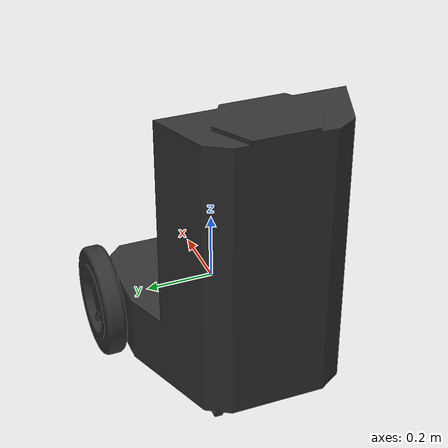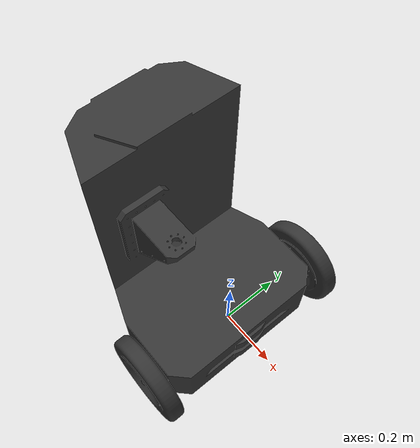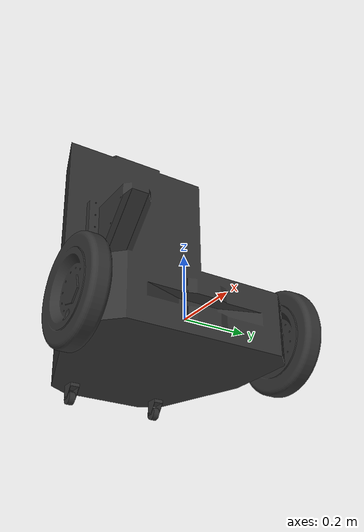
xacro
<?xml version="1.0"?>
<robot xmlns:xacro="http://www.ros.org/wiki/xacro">

  <xacro:include filename="$(find tr3_description)/urdf/base/base.gazebo.xacro" />
	<xacro:include filename="$(find tr3_description)/urdf/base/base.transmission.xacro" />

	<!-- wheel macros -->
  <xacro:macro name="tr3_wheel" params="name *origin *axis">
		<joint name="${name}" type="continuous">
			<parent link="base_link"/>
			<child link="link_${name}"/>
			<xacro:insert_block name="axis" />
			<limit effort="100.0" velocity="1.0"/>
			<xacro:insert_block name="origin" />
    	<dynamics damping="0.001" friction="0.1"/>
		</joint>
		<link name="link_${name}">
			<collision>
				<geometry>
		      <mesh filename="package://tr3_description/meshes/stl/xt-wl-a.stl" scale="0.001 0.001 0.001"/>
				</geometry>
				<origin rpy="0 0 0" />
			</collision>
			<inertial>
      	<mass value="10" />
		    <inertia ixx="0.01" ixy="0.0" ixz="0.0" iyy="0.01" iyz="0.0" izz="0.01" />
			</inertial>
			<visual>
				<geometry>
		      <mesh filename="package://tr3_description/meshes/stl/xt-wl-a.stl" scale="0.001 0.001 0.001"/>
				</geometry>
		    <material name="slate_gray">
		      <color rgba="0.2 0.2 0.2 1"/>
		    </material>
				<origin rpy="0 0 0" />
			</visual>
		</link>
	</xacro:macro>

	<!-- resulting links and joints -->
	<link name="base_link">
		<collision>
			<geometry>
        <mesh filename="package://tr3_description/meshes/stl/tr-bs-a.stl" scale="0.001 0.001 0.001"/>
			</geometry>
			<origin rpy="0 0 1.5708" />
		</collision>
		<inertial>
      	<mass value="10" />
        <origin xyz="-0.300 0 0.100" />
		    <inertia ixx="0.001" ixy="0.0" ixz="0.0" iyy="0.001" iyz="0.0" izz="0.001" />
		</inertial>
		<visual>
			<geometry>
        <mesh filename="package://tr3_description/meshes/stl/tr-bs-a.stl" scale="0.001 0.001 0.001"/>
			</geometry>
      <material name="slate_gray">
        <color rgba="0.2 0.2 0.2 1"/>
      </material>
			<origin rpy="0 0 1.5708" />
		</visual>
	</link>

  <link name="link_b2">
    <collision>
      <geometry>
        <mesh filename="package://tr3_description/meshes/stl/tr-bs-b.stl" scale="0.001 0.001 0.001"/>
      </geometry>
      <origin rpy="0 0 1.5708" />
    </collision>
    <inertial>
        <mass value="0.1" />
        <inertia ixx="0.0001" ixy="0.0" ixz="0.0" iyy="0.0001" iyz="0.0" izz="0.0001" />
    </inertial>
    <visual>
      <geometry>
        <mesh filename="package://tr3_description/meshes/stl/tr-bs-b.stl" scale="0.001 0.001 0.001"/>
      </geometry>
      <material name="slate_gray">
        <color rgba="0.2 0.2 0.2 1"/>
      </material>
      <origin rpy="0 0 1.5708" />
    </visual>
  </link>

  <link name="link_b3">
    <collision>
      <geometry>
        <mesh filename="package://tr3_description/meshes/stl/tr-bs-c.stl" scale="0.001 0.001 0.001"/>
      </geometry>
      <origin rpy="0 0 1.5708" />
    </collision>
    <inertial>
        <mass value="0.1" />
        <inertia ixx="0.0001" ixy="0.0" ixz="0.0" iyy="0.0001" iyz="0.0" izz="0.0001" />
    </inertial>
    <visual>
      <geometry>
        <mesh filename="package://tr3_description/meshes/stl/tr-bs-c.stl" scale="0.001 0.001 0.001"/>
      </geometry>
      <material name="slate_gray">
        <color rgba="0.2 0.2 0.2 1"/>
      </material>
      <origin rpy="0 0 1.5708" />
    </visual>
  </link>

  <link name="link_b4">
    <collision>
      <geometry>
        <mesh filename="package://tr3_description/meshes/stl/tr-bs-b.stl" scale="0.001 0.001 0.001"/>
      </geometry>
      <origin rpy="0 0 1.5708" />
    </collision>
    <inertial>
        <mass value="0.1" />
        <inertia ixx="0.0001" ixy="0.0" ixz="0.0" iyy="0.0001" iyz="0.0" izz="0.0001" />
    </inertial>
    <visual>
      <geometry>
        <mesh filename="package://tr3_description/meshes/stl/tr-bs-b.stl" scale="0.001 0.001 0.001"/>
      </geometry>
      <material name="slate_gray">
        <color rgba="0.2 0.2 0.2 1"/>
      </material>
      <origin rpy="0 0 1.5708" />
    </visual>
  </link>

  <link name="link_b5">
    <collision>
      <geometry>
        <mesh filename="package://tr3_description/meshes/stl/tr-bs-c.stl" scale="0.001 0.001 0.001"/>
      </geometry>
      <origin rpy="0 0 1.5708" />
    </collision>
    <inertial>
        <mass value="0.1" />
        <inertia ixx="0.0001" ixy="0.0" ixz="0.0" iyy="0.0001" iyz="0.0" izz="0.0001" />
    </inertial>
    <visual>
      <geometry>
        <mesh filename="package://tr3_description/meshes/stl/tr-bs-c.stl" scale="0.001 0.001 0.001"/>
      </geometry>
      <material name="slate_gray">
        <color rgba="0.2 0.2 0.2 1"/>
      </material>
      <origin rpy="0 0 1.5708" />
    </visual>
  </link>

  <joint name="b2" type="fixed">
    <parent link="base_link"/>
    <child link="link_b2"/>
    <origin xyz="-0.39975 -0.147 -0.097" rpy="0 3.1415 3.1415"/>
    <axis xyz="0 0 1"/>
    <dynamics damping="0.1" friction="0.1"/>
  </joint>

  <joint name="b3" type="fixed">
    <parent link="link_b2"/>
    <child link="link_b3"/>
    <origin xyz="-0.0138 0 0.0390" rpy="1.5708 0 0"/>
    <axis xyz="0 0 1"/>
    <dynamics damping="0.1" friction="0.1"/>
  </joint>

  <joint name="b4" type="fixed">
    <parent link="base_link"/>
    <child link="link_b4"/>
    <origin xyz="-0.39975 0.147 -0.097" rpy="0 3.1415 3.1415"/>
    <axis xyz="0 0 1"/>
    <dynamics damping="0.1" friction="0.1"/>
  </joint>

  <joint name="b5" type="fixed">
    <parent link="link_b4"/>
    <child link="link_b5"/>
    <origin xyz="-0.0138 0 0.0390" rpy="1.5708 0 0"/>
    <axis xyz="0 0 1"/>
    <dynamics damping="0.1" friction="0.1"/>
  </joint>

  <joint name="rplidar_joint" type="fixed">
    <axis xyz="0 0 1" />
    <origin xyz="0.11 0 0" rpy="0 0 3.1415" />
    <parent link="base_link" />
    <child link="laser" />
  </joint>

  <link name="laser">
  </link>

	<xacro:tr3_wheel name="b0">
    <axis xyz="0 1 0"/>
		<origin rpy="0 0 0" xyz="0 0.3281 0"/>
	</xacro:tr3_wheel>

	<xacro:tr3_wheel name="b1">
    <axis xyz="0 -1 0"/>
		<origin rpy="0 0 3.1415" xyz="0 -0.3281 0"/>
	</xacro:tr3_wheel>

	<!-- dummy link required in order to specify base_link inertia because MoveIt is insane -->
  <link name="dummy_link">

  </link>

  <joint name="dummy_joint" type="fixed">
     <parent link="dummy_link"/>
     <child link="base_link"/>
   </joint>

</robot>
